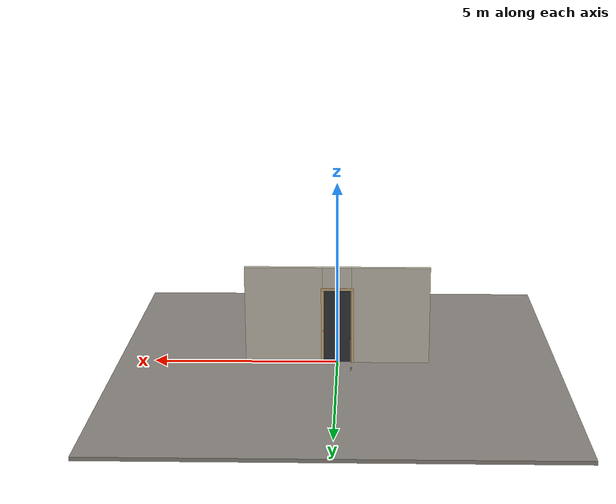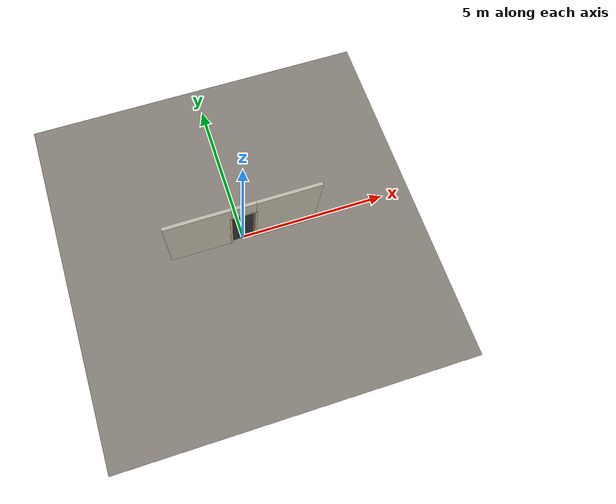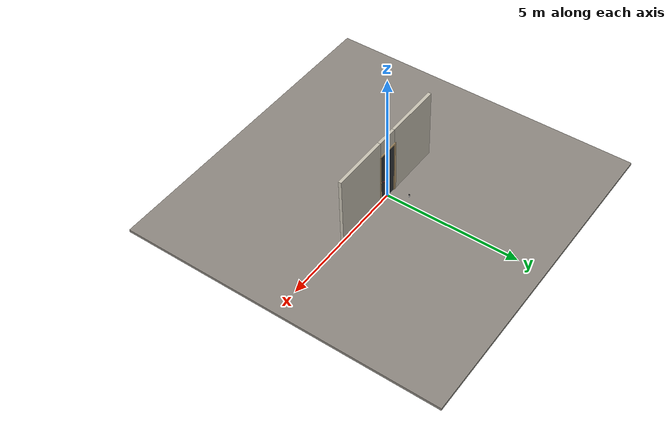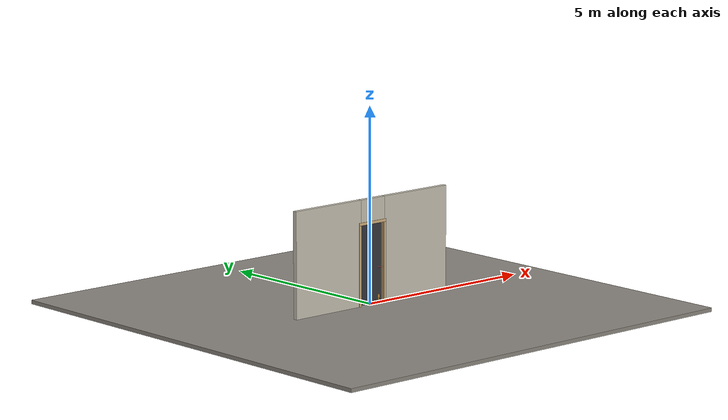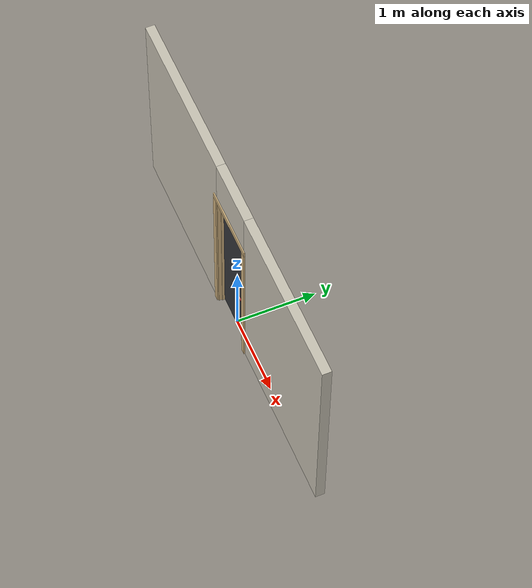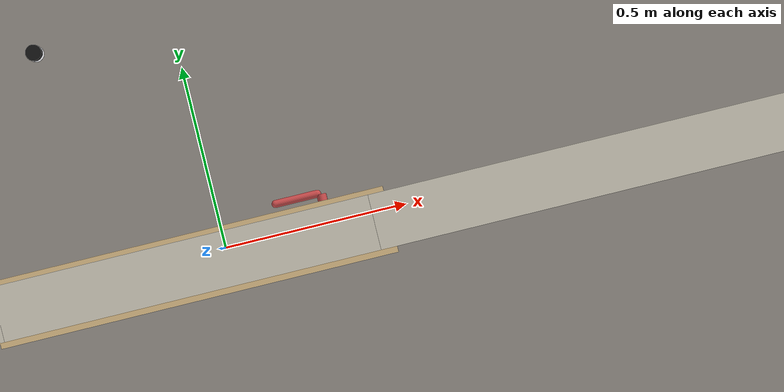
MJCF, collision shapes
<?xml version="1.0" ?>
<mujoco model="db0868_swing_single_full">
  <compiler angle="radian" meshdir="../../hardware" texturedir="../../textures" autolimits="true" inertiafromgeom="false"/>
  <option timestep="0.002" integrator="implicitfast" cone="elliptic" impratio="10" noslip_iterations="3">
    <flag multiccd="enable"/>
  </option>
  <size memory="16M"/>
  <default>
    <geom condim="4" solref="0.005 1" solimp="0.95 0.99 0.001"/>
    <joint solreflimit="0.005 1" solimplimit="0.95 0.99 0.001"/>
    <tendon solreflimit="0.005 1"/>
    <equality solref="0.002 1"/>
  </default>
  <visual>
    <headlight ambient="0.4 0.4 0.4" diffuse="0.7 0.7 0.7" specular="0.2 0.2 0.2"/>
    <quality shadowsize="4096"/>
    <map znear="0.01" zfar="60"/>
  </visual>
  <asset>
    <mesh name="hinge_e3fd49fe13" file="hinge_e3fd49fe13.obj"/>
    <mesh name="hinge_jamb_e47eb19c39" file="hinge_jamb_e47eb19c39.obj"/>
    <mesh name="lever_9f02b544cf" file="lever_9f02b544cf.obj"/>
    <material name="mat_floor" rgba="0.55 0.53 0.5 1" specular="0.2" shininess="0.15" reflectance="0"/>
    <material name="mat_wall" rgba="0.78 0.76 0.7 1" specular="0.2" shininess="0.1" reflectance="0"/>
    <material name="mat_leaf" rgba="0.2 0.21 0.23 1" specular="0.2" shininess="0.52" reflectance="0"/>
    <material name="mat_leaf_louver" rgba="0.17 0.178 0.196 1" specular="0.2" shininess="0.4" reflectance="0"/>
    <material name="mat_hinge" rgba="0.65 0.66 0.68 1" specular="0.74" shininess="0.5" reflectance="0.36"/>
    <material name="mat_op_brass_antique" rgba="0.55 0.42 0.22 1" specular="0.74" shininess="0.45" reflectance="0.36"/>
    <material name="mat_trim" rgba="0.85 0.66 0.3 1" specular="0.8" shininess="0.75" reflectance="0.4"/>
    <material name="mat_bolt" rgba="0.85 0.66 0.3 1" specular="0.8" shininess="0.75" reflectance="0.4"/>
    <material name="mat_frame" rgba="0.82 0.7 0.5 1" specular="0.2" shininess="0.45" reflectance="0"/>
    <material name="mat_kickdown" rgba="0.85 0.66 0.3 1" specular="0.8" shininess="0.75" reflectance="0.4"/>
    <material name="mat_kickdown_pad" rgba="0.92 0.92 0.9 1" specular="0.2" shininess="0.6" reflectance="0"/>
    <material name="mat_bumper_stop" rgba="0.08 0.08 0.08 1" specular="0.2" shininess="0.1" reflectance="0"/>
    <material name="mat_stop_base" rgba="0.9 0.9 0.92 1" specular="0.8" shininess="0.9" reflectance="0.4"/>
    <texture name="skybox" type="skybox" builtin="gradient" rgb1="0.6 0.7 0.85" rgb2="0.9 0.92 0.95" width="256" height="256"/>
  </asset>
  <worldbody>
    <light name="sun" pos="1.5 -2.5 4" dir="-0.3 0.5 -0.8" directional="true" diffuse="0.8 0.8 0.8" specular="0.3 0.3 0.3" castshadow="true"/>
    <light name="fill" pos="-1.5 2.5 3" dir="0.3 -0.5 -0.7" directional="true" diffuse="0.35 0.35 0.4" castshadow="false"/>
    <camera name="robot_view" pos="0 -2.575187 1.734312" xyaxes="1 0 0 0 0.26963 0.962964" fovy="52"/>
    <camera name="far_view" pos="0 2.509187 1.734312" xyaxes="-1 0 0 0 -0.26963 0.962964" fovy="52"/>
    <camera name="iso" pos="1.932062 -2.168438 2.141063" xyaxes="0.741536 0.670913 0 -0.242917 0.268487 0.932151" fovy="46"/>
    <camera name="detail_handle" pos="0.375 -0.8725 1.194" xyaxes="0.97561 0.219512 0 -0.070934 0.315262 0.94635" fovy="38"/>
    <geom name="floor" type="box" size="6 6 0.05" pos="0 0 -0.05" material="mat_floor" group="0" contype="1" conaffinity="1" friction="0.8 0.005 0.0001" density="2400"/>
    <geom name="wall_left" type="box" size="1.061 0.0575 1.35" pos="-1.439 -0.033 1.35" material="mat_wall" group="0" contype="1" conaffinity="1" friction="0.6 0.005 0.0001" density="800"/>
    <geom name="wall_right" type="box" size="1.046 0.0575 1.35" pos="1.454 -0.033 1.35" material="mat_wall" group="0" contype="1" conaffinity="1" friction="0.6 0.005 0.0001" density="800"/>
    <geom name="wall_header" type="box" size="0.393 0.0575 0.303" pos="0.015 -0.033 2.397" material="mat_wall" group="0" contype="1" conaffinity="1" friction="0.6 0.005 0.0001" density="800"/>
    <geom name="hinge_0_jamb" type="mesh" mesh="hinge_jamb_e47eb19c39" pos="-0.356 0.0245 0.259" quat="0 1 0 0" material="mat_hinge" group="1" contype="0" conaffinity="0" density="7850"/>
    <geom name="hinge_1_jamb" type="mesh" mesh="hinge_jamb_e47eb19c39" pos="-0.356 0.0245 1.025" quat="0 1 0 0" material="mat_hinge" group="1" contype="0" conaffinity="0" density="7850"/>
    <geom name="hinge_2_jamb" type="mesh" mesh="hinge_jamb_e47eb19c39" pos="-0.356 0.0245 1.861" quat="0 1 0 0" material="mat_hinge" group="1" contype="0" conaffinity="0" density="7850"/>
    <geom name="jamb_hinge" type="box" size="0.0095 0.0575 1.0225" pos="-0.3685 -0.033 1.0225" material="mat_frame" group="0" contype="1" conaffinity="1" friction="0.6 0.005 0.0001" density="400"/>
    <geom name="strike_914_wall_n" type="box" size="0.0245 0.041325 0.0167" pos="0.3835 -0.049175 0.914" material="mat_frame" group="0" contype="1" conaffinity="1" friction="0.6 0.005 0.0001" density="400"/>
    <geom name="strike_914_wall_p" type="box" size="0.0245 0.008 0.0167" pos="0.3835 0.01585 0.914" material="mat_frame" group="0" contype="1" conaffinity="1" friction="0.6 0.005 0.0001" density="400"/>
    <geom name="strike_914_ramp" type="box" size="0.0245 0.01649 0.0167" pos="0.388136 0.028673 0.914" quat="0.977148 0 0 -0.212558" material="mat_frame" group="0" contype="1" conaffinity="1" friction="0.12 0.005 0.0001" density="400"/>
    <geom name="strike_914_back" type="box" size="0.01615 0.00785 0.0167" pos="0.39185 0 0.914" material="mat_frame" group="0" contype="1" conaffinity="1" friction="0.6 0.005 0.0001" density="400"/>
    <geom name="jamb_strike_0" type="box" size="0.0245 0.0575 0.44865" pos="0.3835 -0.033 0.44865" material="mat_frame" group="0" contype="1" conaffinity="1" friction="0.6 0.005 0.0001" density="400"/>
    <geom name="jamb_strike_1" type="box" size="0.0245 0.0575 0.55715" pos="0.3835 -0.033 1.48785" material="mat_frame" group="0" contype="1" conaffinity="1" friction="0.6 0.005 0.0001" density="400"/>
    <geom name="jamb_head" type="box" size="0.393 0.0575 0.0095" pos="0.015 -0.033 2.0545" material="mat_frame" group="0" contype="1" conaffinity="1" friction="0.6 0.005 0.0001" density="400"/>
    <geom name="head_stud" type="box" size="0.393 0.0575 0.015" pos="0.015 -0.033 2.079" material="mat_wall" group="0" contype="1" conaffinity="1" friction="0.6 0.005 0.0001" density="500"/>
    <geom name="stop_hinge" type="box" size="0.0055 0.016 1.0225" pos="-0.3535 -0.034 1.0225" material="mat_frame" group="0" contype="1" conaffinity="1" friction="0.6 0.005 0.0001" density="400"/>
    <geom name="stop_strike" type="box" size="0.0055 0.016 1.0225" pos="0.3535 -0.034 1.0225" material="mat_frame" group="0" contype="1" conaffinity="1" friction="0.6 0.005 0.0001" density="400"/>
    <geom name="stop_head" type="box" size="0.359 0.016 0.0055" pos="0 -0.034 2.0395" material="mat_frame" group="0" contype="1" conaffinity="1" friction="0.6 0.005 0.0001" density="400"/>
    <geom name="casing_l_n" type="box" size="0.035 0.008 1.032" pos="-0.408 -0.0985 1.0225" material="mat_frame" group="2" contype="0" conaffinity="0" density="400"/>
    <geom name="casing_r_n" type="box" size="0.035 0.008 1.032" pos="0.408 -0.0985 1.0225" material="mat_frame" group="2" contype="0" conaffinity="0" density="400"/>
    <geom name="casing_h_n" type="box" size="0.443 0.008 0.035" pos="0 -0.0985 2.094" material="mat_frame" group="2" contype="0" conaffinity="0" density="400"/>
    <geom name="casing_l_p" type="box" size="0.035 0.008 1.032" pos="-0.408 0.0325 1.0225" material="mat_frame" group="2" contype="0" conaffinity="0" density="400"/>
    <geom name="casing_r_p" type="box" size="0.035 0.008 1.032" pos="0.408 0.0325 1.0225" material="mat_frame" group="2" contype="0" conaffinity="0" density="400"/>
    <geom name="casing_h_p" type="box" size="0.443 0.008 0.035" pos="0 0.0325 2.094" material="mat_frame" group="2" contype="0" conaffinity="0" density="400"/>
    <geom name="door_stop_base" type="cylinder" size="0.022 0.003" pos="-0.372 0.62885 0.003" material="mat_stop_base" group="0" contype="1" conaffinity="1" friction="0.6 0.005 0.0001" density="7850"/>
    <geom name="door_stop_post" type="cylinder" size="0.012 0.0245" pos="-0.372 0.62885 0.0305" material="mat_stop_base" group="0" contype="1" conaffinity="1" friction="0.6 0.005 0.0001" density="7850"/>
    <geom name="door_stop_bumper" type="cylinder" size="0.022 0.02" pos="-0.372 0.62885 0.075" material="mat_bumper_stop" group="0" contype="1" conaffinity="1" friction="0.6 0.005 0.0001" density="1100"/>
    <site name="approach_point" pos="0 -1.5 0" quat="1 0 0 0" size="0.05" rgba="0.2 0.9 0.2 0.5" group="4"/>
    <site name="goal_point" pos="0 1.5 0" quat="1 0 0 0" size="0.05" rgba="0.2 0.9 0.2 0.5" group="4"/>
    <site name="door_plane_center" pos="0 0 1.0225" quat="1 0 0 0" size="0.02" rgba="0.2 0.9 0.2 0.5" group="4"/>
    <body name="leaf" pos="-0.359 0 0">
      <inertial pos="0.366518 -0.002438 0.939573" mass="12.312975" quat="-0.47672 0.489987 0.512637 0.519475" diaginertia="0.58446915 4.718479443 5.298538413"/>
      <joint name="leaf_hinge" type="hinge" axis="0 0 1" pos="0.003 0.0245 0" limited="true" range="0 1.570796" damping="0.143782" frictionloss="0.151429" armature="0.02"/>
      <geom name="leaf_slab" type="box" size="0.3555 0.0175 1.016" pos="0.3585 0 1.025" material="mat_leaf" group="0" contype="1" conaffinity="1" friction="0.35 0.005 0.0001" density="1"/>
      <geom name="leaf_louver_0" type="box" size="0.2655 0.002 0.026356" pos="0.3585 0 0.257621" quat="0.953717 0.300706 0 0" material="mat_leaf_louver" group="1" contype="0" conaffinity="0" density="1"/>
      <geom name="leaf_louver_1" type="box" size="0.2655 0.002 0.026356" pos="0.3585 0 0.307824" quat="0.953717 0.300706 0 0" material="mat_leaf_louver" group="1" contype="0" conaffinity="0" density="1"/>
      <geom name="leaf_louver_2" type="box" size="0.2655 0.002 0.026356" pos="0.3585 0 0.358026" quat="0.953717 0.300706 0 0" material="mat_leaf_louver" group="1" contype="0" conaffinity="0" density="1"/>
      <geom name="leaf_louver_3" type="box" size="0.2655 0.002 0.026356" pos="0.3585 0 0.408228" quat="0.953717 0.300706 0 0" material="mat_leaf_louver" group="1" contype="0" conaffinity="0" density="1"/>
      <geom name="leaf_louver_4" type="box" size="0.2655 0.002 0.026356" pos="0.3585 0 0.458431" quat="0.953717 0.300706 0 0" material="mat_leaf_louver" group="1" contype="0" conaffinity="0" density="1"/>
      <geom name="leaf_louver_5" type="box" size="0.2655 0.002 0.026356" pos="0.3585 0 0.508633" quat="0.953717 0.300706 0 0" material="mat_leaf_louver" group="1" contype="0" conaffinity="0" density="1"/>
      <geom name="leaf_louver_6" type="box" size="0.2655 0.002 0.026356" pos="0.3585 0 0.558835" quat="0.953717 0.300706 0 0" material="mat_leaf_louver" group="1" contype="0" conaffinity="0" density="1"/>
      <geom name="leaf_louver_7" type="box" size="0.2655 0.002 0.026356" pos="0.3585 0 0.609038" quat="0.953717 0.300706 0 0" material="mat_leaf_louver" group="1" contype="0" conaffinity="0" density="1"/>
      <geom name="leaf_louver_8" type="box" size="0.2655 0.002 0.026356" pos="0.3585 0 0.65924" quat="0.953717 0.300706 0 0" material="mat_leaf_louver" group="1" contype="0" conaffinity="0" density="1"/>
      <geom name="leaf_louver_9" type="box" size="0.2655 0.002 0.026356" pos="0.3585 0 0.709442" quat="0.953717 0.300706 0 0" material="mat_leaf_louver" group="1" contype="0" conaffinity="0" density="1"/>
      <geom name="leaf_louver_10" type="box" size="0.2655 0.002 0.026356" pos="0.3585 0 0.759645" quat="0.953717 0.300706 0 0" material="mat_leaf_louver" group="1" contype="0" conaffinity="0" density="1"/>
      <geom name="leaf_louver_11" type="box" size="0.2655 0.002 0.026356" pos="0.3585 0 0.809847" quat="0.953717 0.300706 0 0" material="mat_leaf_louver" group="1" contype="0" conaffinity="0" density="1"/>
      <geom name="leaf_louver_12" type="box" size="0.2655 0.002 0.026356" pos="0.3585 0 0.860049" quat="0.953717 0.300706 0 0" material="mat_leaf_louver" group="1" contype="0" conaffinity="0" density="1"/>
      <geom name="leaf_louver_13" type="box" size="0.2655 0.002 0.026356" pos="0.3585 0 0.910252" quat="0.953717 0.300706 0 0" material="mat_leaf_louver" group="1" contype="0" conaffinity="0" density="1"/>
      <geom name="leaf_louver_14" type="box" size="0.2655 0.002 0.026356" pos="0.3585 0 0.960454" quat="0.953717 0.300706 0 0" material="mat_leaf_louver" group="1" contype="0" conaffinity="0" density="1"/>
      <geom name="leaf_louver_15" type="box" size="0.2655 0.002 0.026356" pos="0.3585 0 1.010656" quat="0.953717 0.300706 0 0" material="mat_leaf_louver" group="1" contype="0" conaffinity="0" density="1"/>
      <geom name="leaf_louver_16" type="box" size="0.2655 0.002 0.026356" pos="0.3585 0 1.060859" quat="0.953717 0.300706 0 0" material="mat_leaf_louver" group="1" contype="0" conaffinity="0" density="1"/>
      <geom name="leaf_louver_17" type="box" size="0.2655 0.002 0.026356" pos="0.3585 0 1.111061" quat="0.953717 0.300706 0 0" material="mat_leaf_louver" group="1" contype="0" conaffinity="0" density="1"/>
      <geom name="leaf_louver_18" type="box" size="0.2655 0.002 0.026356" pos="0.3585 0 1.161264" quat="0.953717 0.300706 0 0" material="mat_leaf_louver" group="1" contype="0" conaffinity="0" density="1"/>
      <geom name="leaf_louver_19" type="box" size="0.2655 0.002 0.026356" pos="0.3585 0 1.211466" quat="0.953717 0.300706 0 0" material="mat_leaf_louver" group="1" contype="0" conaffinity="0" density="1"/>
      <geom name="leaf_louver_20" type="box" size="0.2655 0.002 0.026356" pos="0.3585 0 1.261668" quat="0.953717 0.300706 0 0" material="mat_leaf_louver" group="1" contype="0" conaffinity="0" density="1"/>
      <geom name="leaf_louver_21" type="box" size="0.2655 0.002 0.026356" pos="0.3585 0 1.311871" quat="0.953717 0.300706 0 0" material="mat_leaf_louver" group="1" contype="0" conaffinity="0" density="1"/>
      <geom name="leaf_louver_22" type="box" size="0.2655 0.002 0.026356" pos="0.3585 0 1.362073" quat="0.953717 0.300706 0 0" material="mat_leaf_louver" group="1" contype="0" conaffinity="0" density="1"/>
      <geom name="leaf_louver_23" type="box" size="0.2655 0.002 0.026356" pos="0.3585 0 1.412275" quat="0.953717 0.300706 0 0" material="mat_leaf_louver" group="1" contype="0" conaffinity="0" density="1"/>
      <geom name="leaf_louver_24" type="box" size="0.2655 0.002 0.026356" pos="0.3585 0 1.462478" quat="0.953717 0.300706 0 0" material="mat_leaf_louver" group="1" contype="0" conaffinity="0" density="1"/>
      <geom name="leaf_louver_25" type="box" size="0.2655 0.002 0.026356" pos="0.3585 0 1.51268" quat="0.953717 0.300706 0 0" material="mat_leaf_louver" group="1" contype="0" conaffinity="0" density="1"/>
      <geom name="leaf_louver_26" type="box" size="0.2655 0.002 0.026356" pos="0.3585 0 1.562882" quat="0.953717 0.300706 0 0" material="mat_leaf_louver" group="1" contype="0" conaffinity="0" density="1"/>
      <geom name="leaf_louver_27" type="box" size="0.2655 0.002 0.026356" pos="0.3585 0 1.613085" quat="0.953717 0.300706 0 0" material="mat_leaf_louver" group="1" contype="0" conaffinity="0" density="1"/>
      <geom name="leaf_louver_28" type="box" size="0.2655 0.002 0.026356" pos="0.3585 0 1.663287" quat="0.953717 0.300706 0 0" material="mat_leaf_louver" group="1" contype="0" conaffinity="0" density="1"/>
      <geom name="leaf_louver_29" type="box" size="0.2655 0.002 0.026356" pos="0.3585 0 1.713489" quat="0.953717 0.300706 0 0" material="mat_leaf_louver" group="1" contype="0" conaffinity="0" density="1"/>
      <geom name="leaf_louver_30" type="box" size="0.2655 0.002 0.026356" pos="0.3585 0 1.763692" quat="0.953717 0.300706 0 0" material="mat_leaf_louver" group="1" contype="0" conaffinity="0" density="1"/>
      <geom name="leaf_louver_31" type="box" size="0.2655 0.002 0.026356" pos="0.3585 0 1.813894" quat="0.953717 0.300706 0 0" material="mat_leaf_louver" group="1" contype="0" conaffinity="0" density="1"/>
      <geom name="leaf_louver_32" type="box" size="0.2655 0.002 0.026356" pos="0.3585 0 1.864096" quat="0.953717 0.300706 0 0" material="mat_leaf_louver" group="1" contype="0" conaffinity="0" density="1"/>
      <geom name="leaf_louver_33" type="box" size="0.2655 0.002 0.026356" pos="0.3585 0 1.914299" quat="0.953717 0.300706 0 0" material="mat_leaf_louver" group="1" contype="0" conaffinity="0" density="1"/>
      <geom name="hinge_0" type="mesh" mesh="hinge_e3fd49fe13" pos="0.003 0.0245 0.259" quat="0 1 0 0" material="mat_hinge" group="1" contype="0" conaffinity="0" density="7850"/>
      <geom name="hinge_1" type="mesh" mesh="hinge_e3fd49fe13" pos="0.003 0.0245 1.025" quat="0 1 0 0" material="mat_hinge" group="1" contype="0" conaffinity="0" density="7850"/>
      <geom name="hinge_2" type="mesh" mesh="hinge_e3fd49fe13" pos="0.003 0.0245 1.861" quat="0 1 0 0" material="mat_hinge" group="1" contype="0" conaffinity="0" density="7850"/>
      <geom name="leaf_latch_bolt_faceplate" type="box" size="0.0006 0.01235 0.0267" pos="0.7134 0 0.914" material="mat_bolt" group="1" contype="0" conaffinity="0" density="8500"/>
      <geom name="kickdown_housing" type="box" size="0.022 0.016 0.045" pos="0.614 -0.0335 0.169" material="mat_kickdown" group="2" contype="0" conaffinity="0" density="8500"/>
      <geom name="kickdown_arm" type="box" size="0.012 0.006 0.045" pos="0.614 -0.0295 0.104" material="mat_kickdown" group="2" contype="0" conaffinity="0" density="8500"/>
      <geom name="kickdown_pad" type="cylinder" size="0.014 0.006" pos="0.614 -0.0295 0.061" material="mat_kickdown_pad" group="2" contype="0" conaffinity="0" density="1200"/>
      <site name="leaf_edge_mid" pos="0.714 0 1.016" quat="1 0 0 0" size="0.02" rgba="0.2 0.9 0.2 0.5" group="4"/>
      <body name="leaf_handle" pos="0.654 0 0.914">
        <inertial pos="-0.028779 0 0" mass="0.970196" quat="0 0.707107 0.707107 0" diaginertia="0.001765339 0.003138972 0.004726252"/>
        <joint name="leaf_handle_hinge" type="hinge" axis="0 -1 0" limited="true" range="0 0.96" damping="0.20055" frictionloss="0.046" stiffness="0.8" springref="-0.577217" armature="0.01"/>
        <geom name="leaf_handle_spindle" type="cylinder" size="0.006 0.0255" pos="0 0 0" quat="0.707107 -0.707107 0 0" material="mat_op_brass_antique" group="1" contype="0" conaffinity="0" density="7850"/>
        <geom name="leaf_handle_lever_n" type="mesh" mesh="lever_9f02b544cf" pos="0 -0.0175 0" quat="0.707107 0.707107 0 0" material="mat_op_brass_antique" group="1" contype="0" conaffinity="0" density="3000"/>
        <geom name="leaf_handle_lever_col_n" type="capsule" size="0.0095 0.053" pos="-0.0625 -0.0725 0" quat="0.707107 0 -0.707107 0" material="mat_op_brass_antique" group="3" contype="1" conaffinity="1" rgba="0.8 0.3 0.3 0.25" friction="0.7 0.01 0.0001" density="3000"/>
        <geom name="leaf_handle_hub_col_n" type="cylinder" size="0.012 0.022" pos="0 -0.0475 0" quat="0.707107 -0.707107 0 0" material="mat_op_brass_antique" group="3" contype="1" conaffinity="1" rgba="0.8 0.3 0.3 0.25" friction="0.6 0.005 0.0001" density="3000"/>
        <geom name="leaf_handle_lever_p" type="mesh" mesh="lever_9f02b544cf" pos="0 0.0175 0" quat="-0.707107 0.707107 0 0" material="mat_op_brass_antique" group="1" contype="0" conaffinity="0" density="3000"/>
        <geom name="leaf_handle_lever_col_p" type="capsule" size="0.0095 0.053" pos="-0.0625 0.0725 0" quat="0.707107 0 -0.707107 0" material="mat_op_brass_antique" group="3" contype="1" conaffinity="1" rgba="0.8 0.3 0.3 0.25" friction="0.7 0.01 0.0001" density="3000"/>
        <geom name="leaf_handle_hub_col_p" type="cylinder" size="0.012 0.022" pos="0 0.0475 0" quat="0.707107 -0.707107 0 0" material="mat_op_brass_antique" group="3" contype="1" conaffinity="1" rgba="0.8 0.3 0.3 0.25" friction="0.6 0.005 0.0001" density="3000"/>
        <site name="leaf_handle_grip_n" pos="-0.1 -0.0725 0" quat="1 0 0 0" size="0.012" rgba="0.2 0.9 0.2 0.5" group="4"/>
        <site name="leaf_handle_grip_p" pos="-0.1 0.0725 0" quat="1 0 0 0" size="0.012" rgba="0.2 0.9 0.2 0.5" group="4"/>
      </body>
      <body name="leaf_latch_bolt" pos="0.714 0 0.914">
        <inertial pos="-0.00865 0 0" mass="0.041419" quat="0.92388 -0.382683 0 0" diaginertia="0.000000798 0.000005598 0.000005598"/>
        <joint name="leaf_latch_bolt_slide" type="slide" axis="-1 0 0" limited="true" range="0 0.0127" damping="2" frictionloss="0.3" stiffness="300" springref="-0.008333" armature="0.1"/>
        <geom name="leaf_latch_bolt_capsule" type="capsule" size="0.00635 0.015" pos="-0.00865 0 0" quat="0.707107 0 0.707107 0" material="mat_bolt" group="0" contype="1" conaffinity="1" friction="0.2 0.005 0.0001" density="8500"/>
      </body>
    </body>
  </worldbody>
  <tendon>
    <fixed name="leaf_latch_bolt_coupling" limited="true" range="0 10">
      <joint joint="leaf_latch_bolt_slide" coef="1"/>
      <joint joint="leaf_handle_hinge" coef="-0.016711"/>
    </fixed>
  </tendon>
  <sensor>
    <jointpos name="leaf_hinge_pos" joint="leaf_hinge"/>
    <jointvel name="leaf_hinge_vel" joint="leaf_hinge"/>
    <jointpos name="leaf_handle_hinge_pos" joint="leaf_handle_hinge"/>
    <jointvel name="leaf_handle_hinge_vel" joint="leaf_handle_hinge"/>
    <jointpos name="leaf_latch_bolt_slide_pos" joint="leaf_latch_bolt_slide"/>
    <jointvel name="leaf_latch_bolt_slide_vel" joint="leaf_latch_bolt_slide"/>
  </sensor>
</mujoco>
